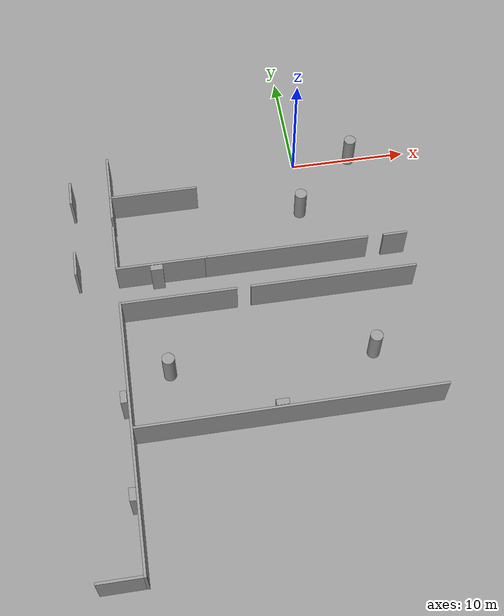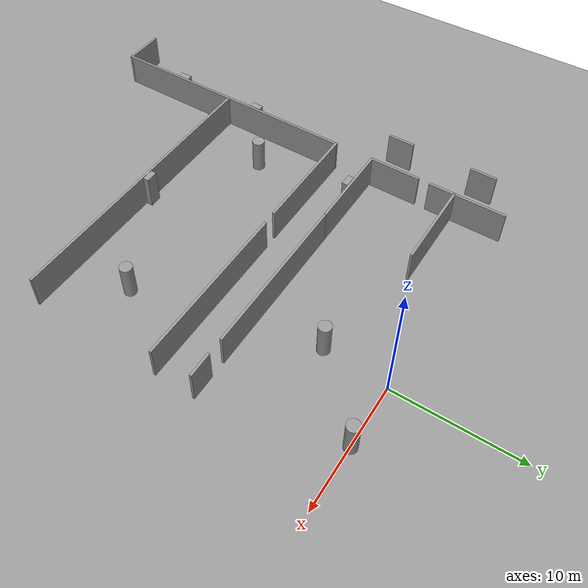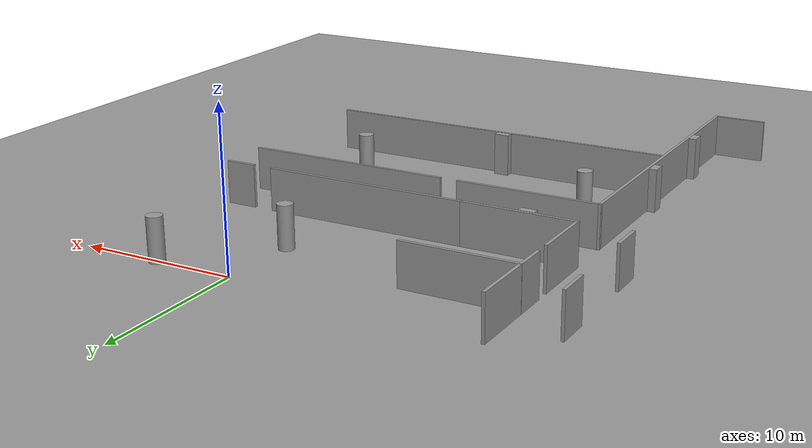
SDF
<sdf version="1.6">
 <world name="default">
  <model name="ground_plane_0">
   <static>1</static>
   <link name="link">
    <collision name="collision">
     <geometry><plane><normal>0 0 1</normal><size>100 100</size></plane></geometry>
     <surface><friction><ode><mu>100</mu><mu2>50</mu2></ode></friction></surface>
    </collision>
    <visual name="visual">
     <cast_shadows>0</cast_shadows>
     <geometry><plane><normal>0 0 1</normal><size>100 100</size></plane></geometry>
     <material>
      <script><uri>file://media/materials/scripts/gazebo.material</uri><name>Gazebo/Grey</name></script>
     </material>
    </visual>
   </link>
   <pose>-5.34924 -9.48736 0 0 -0 0</pose>
  </model>
  <model name="grey_wall_0_0">
   <link name="link">
    <pose>0 0 1.4 0 -0 0</pose>
    <inertial>
     <mass>1</mass>
     <inertia><ixx>1</ixx><ixy>0</ixy><ixz>0</ixz><iyy>1</iyy><iyz>0</iyz><izz>1</izz></inertia>
    </inertial>
    <visual name="visual">
     <cast_shadows>0</cast_shadows>
     <geometry><box><size>7.4 0.2 2.8</size></box></geometry>
     <material>
      <script>
       <uri>model://grey_wall/materials/scripts</uri>
       <uri>model://grey_wall/materials/textures</uri>
       <name>vrc/grey_wall</name>
      </script>
      <ambient>1 1 1 1</ambient>
      <diffuse>1 1 1 1</diffuse>
      <specular>0 0 0 1</specular>
      <emissive>0 0 0 1</emissive>
      <shader type="vertex"><normal_map>__default__</normal_map></shader>
     </material>
    </visual>
    <collision name="collision">
     <geometry><box><size>7.4 0.2 2.8</size></box></geometry>
     <surface>
      <friction>
       <ode><mu>1</mu><mu2>1</mu2><fdir1>0 0 0</fdir1><slip1>0</slip1><slip2>0</slip2></ode>
       <torsional>
        <coefficient>1</coefficient>
        <patch_radius>0</patch_radius>
        <surface_radius>0</surface_radius>
        <use_patch_radius>1</use_patch_radius>
        <ode><slip>0</slip></ode>
       </torsional>
      </friction>
      <bounce><restitution_coefficient>0</restitution_coefficient><threshold>1e+06</threshold></bounce>
      <contact>
       <collide_without_contact>0</collide_without_contact>
       <collide_without_contact_bitmask>1</collide_without_contact_bitmask>
       <collide_bitmask>1</collide_bitmask>
       <ode>
        <soft_cfm>0</soft_cfm>
        <soft_erp>0.2</soft_erp>
        <kp>1e+13</kp>
        <kd>1</kd>
        <max_vel>0.01</max_vel>
        <min_depth>0</min_depth>
       </ode>
       <bullet>
        <split_impulse>1</split_impulse>
        <split_impulse_penetration_threshold>-0.01</split_impulse_penetration_threshold>
        <soft_cfm>0</soft_cfm>
        <soft_erp>0.2</soft_erp>
        <kp>1e+13</kp>
        <kd>1</kd>
       </bullet>
      </contact>
     </surface>
    </collision>
   </link>
   <static>1</static>
   <pose>-12.7052 -10.3243 0 0 -0 0</pose>
  </model>
  <model name="grey_wall_0_0_clone">
   <link name="link">
    <pose>0 0 1.4 0 -0 0</pose>
    <inertial>
     <mass>1</mass>
     <inertia><ixx>1</ixx><ixy>0</ixy><ixz>0</ixz><iyy>1</iyy><iyz>0</iyz><izz>1</izz></inertia>
    </inertial>
    <visual name="visual">
     <cast_shadows>0</cast_shadows>
     <geometry><box><size>7.4 0.2 2.8</size></box></geometry>
     <material>
      <script>
       <uri>model://grey_wall/materials/scripts</uri>
       <uri>model://grey_wall/materials/textures</uri>
       <name>vrc/grey_wall</name>
      </script>
      <ambient>1 1 1 1</ambient>
      <diffuse>1 1 1 1</diffuse>
      <specular>0 0 0 1</specular>
      <emissive>0 0 0 1</emissive>
      <shader type="vertex"><normal_map>__default__</normal_map></shader>
     </material>
    </visual>
    <collision name="collision">
     <geometry><box><size>7.4 0.2 2.8</size></box></geometry>
     <surface>
      <friction>
       <ode><mu>1</mu><mu2>1</mu2><fdir1>0 0 0</fdir1><slip1>0</slip1><slip2>0</slip2></ode>
       <torsional>
        <coefficient>1</coefficient>
        <patch_radius>0</patch_radius>
        <surface_radius>0</surface_radius>
        <use_patch_radius>1</use_patch_radius>
        <ode><slip>0</slip></ode>
       </torsional>
      </friction>
      <bounce><restitution_coefficient>0</restitution_coefficient><threshold>1e+06</threshold></bounce>
      <contact>
       <collide_without_contact>0</collide_without_contact>
       <collide_without_contact_bitmask>1</collide_without_contact_bitmask>
       <collide_bitmask>1</collide_bitmask>
       <ode>
        <soft_cfm>0</soft_cfm>
        <soft_erp>0.2</soft_erp>
        <kp>1e+13</kp>
        <kd>1</kd>
        <max_vel>0.01</max_vel>
        <min_depth>0</min_depth>
       </ode>
       <bullet>
        <split_impulse>1</split_impulse>
        <split_impulse_penetration_threshold>-0.01</split_impulse_penetration_threshold>
        <soft_cfm>0</soft_cfm>
        <soft_erp>0.2</soft_erp>
        <kp>1e+13</kp>
        <kd>1</kd>
       </bullet>
      </contact>
     </surface>
    </collision>
   </link>
   <static>1</static>
   <pose>-12.6638 -3.11787 0 0 -0 0</pose>
  </model>
  <model name="g3_clone_clone_0_clone_0_0_0_0_0_0_clone_clone_clone_0_clone_0_clone_0_clone_0_clone">
   <link name="link">
    <pose>1.55996 -1.33829 1.4 0 -0 0.001589</pose>
    <inertial>
     <mass>1</mass>
     <inertia><ixx>1</ixx><ixy>0</ixy><ixz>0</ixz><iyy>1</iyy><iyz>0</iyz><izz>1</izz></inertia>
    </inertial>
    <visual name="visual">
     <cast_shadows>0</cast_shadows>
     <geometry><box><size>2 0.2 2.8</size></box></geometry>
     <material>
      <script>
       <uri>model://grey_wall/materials/scripts</uri>
       <uri>model://grey_wall/materials/textures</uri>
       <name>vrc/grey_wall</name>
      </script>
      <ambient>1 1 1 1</ambient>
      <diffuse>1 1 1 1</diffuse>
      <specular>0 0 0 1</specular>
      <emissive>0 0 0 1</emissive>
      <shader type="vertex"><normal_map>__default__</normal_map></shader>
     </material>
    </visual>
    <collision name="collision">
     <geometry><box><size>2 0.2 2.8</size></box></geometry>
     <surface>
      <friction>
       <ode><mu>1</mu><mu2>1</mu2><fdir1>0 0 0</fdir1><slip1>0</slip1><slip2>0</slip2></ode>
       <torsional>
        <coefficient>1</coefficient>
        <patch_radius>0</patch_radius>
        <surface_radius>0</surface_radius>
        <use_patch_radius>1</use_patch_radius>
        <ode><slip>0</slip></ode>
       </torsional>
      </friction>
      <bounce><restitution_coefficient>0</restitution_coefficient><threshold>1e+06</threshold></bounce>
      <contact>
       <collide_without_contact>0</collide_without_contact>
       <collide_without_contact_bitmask>1</collide_without_contact_bitmask>
       <collide_bitmask>1</collide_bitmask>
       <ode>
        <soft_cfm>0</soft_cfm>
        <soft_erp>0.2</soft_erp>
        <kp>1e+13</kp>
        <kd>1</kd>
        <max_vel>0.01</max_vel>
        <min_depth>0</min_depth>
       </ode>
       <bullet>
        <split_impulse>1</split_impulse>
        <split_impulse_penetration_threshold>-0.01</split_impulse_penetration_threshold>
        <soft_cfm>0</soft_cfm>
        <soft_erp>0.2</soft_erp>
        <kp>1e+13</kp>
        <kd>1</kd>
       </bullet>
      </contact>
     </surface>
    </collision>
   </link>
   <static>1</static>
   <pose>5.02098 -9.01184 0 0 -0 0.002262</pose>
  </model>
  <model name="g1_clone_1_1_clone">
   <link name="link">
    <pose>0.251458 0.000378 1.4 0 -0 0</pose>
    <inertial>
     <mass>1</mass>
     <inertia><ixx>1</ixx><ixy>0</ixy><ixz>0</ixz><iyy>1</iyy><iyz>0</iyz><izz>1</izz></inertia>
    </inertial>
    <visual name="visual">
     <cast_shadows>0</cast_shadows>
     <geometry><box><size>13.5 0.2 2.8</size></box></geometry>
     <material>
      <script>
       <uri>model://grey_wall/materials/scripts</uri>
       <uri>model://grey_wall/materials/textures</uri>
       <name>vrc/grey_wall</name>
      </script>
      <ambient>1 1 1 1</ambient>
      <diffuse>1 1 1 1</diffuse>
      <specular>0 0 0 1</specular>
      <emissive>0 0 0 1</emissive>
      <shader type="vertex"><normal_map>__default__</normal_map></shader>
     </material>
    </visual>
    <collision name="collision">
     <geometry><box><size>13.5 0.2 2.8</size></box></geometry>
     <surface>
      <friction>
       <ode><mu>1</mu><mu2>1</mu2><fdir1>0 0 0</fdir1><slip1>0</slip1><slip2>0</slip2></ode>
       <torsional>
        <coefficient>1</coefficient>
        <patch_radius>0</patch_radius>
        <surface_radius>0</surface_radius>
        <use_patch_radius>1</use_patch_radius>
        <ode><slip>0</slip></ode>
       </torsional>
      </friction>
      <bounce><restitution_coefficient>0</restitution_coefficient><threshold>1e+06</threshold></bounce>
      <contact>
       <collide_without_contact>0</collide_without_contact>
       <collide_without_contact_bitmask>1</collide_without_contact_bitmask>
       <collide_bitmask>1</collide_bitmask>
       <ode>
        <soft_cfm>0</soft_cfm>
        <soft_erp>0.2</soft_erp>
        <kp>1e+13</kp>
        <kd>1</kd>
        <max_vel>0.01</max_vel>
        <min_depth>0</min_depth>
       </ode>
       <bullet>
        <split_impulse>1</split_impulse>
        <split_impulse_penetration_threshold>-0.01</split_impulse_penetration_threshold>
        <soft_cfm>0</soft_cfm>
        <soft_erp>0.2</soft_erp>
        <kp>1e+13</kp>
        <kd>1</kd>
       </bullet>
      </contact>
     </surface>
    </collision>
   </link>
   <static>1</static>
   <pose>-2.69768 -10.3249 0 0 -0 0</pose>
  </model>
  <model name="g3_clone_clone_0_0_0_0_0_clone_0_clone_0_clone_2_clone_0_clone_0_clone">
   <link name="link">
    <pose>0.7232 0.251992 1.4 0 -0 0</pose>
    <inertial>
     <mass>1</mass>
     <inertia><ixx>1</ixx><ixy>0</ixy><ixz>0</ixz><iyy>1</iyy><iyz>0</iyz><izz>1</izz></inertia>
    </inertial>
    <visual name="visual">
     <cast_shadows>0</cast_shadows>
     <geometry><box><size>4.3 0.2 2.8</size></box></geometry>
     <material>
      <script>
       <uri>model://grey_wall/materials/scripts</uri>
       <uri>model://grey_wall/materials/textures</uri>
       <name>vrc/grey_wall</name>
      </script>
      <ambient>1 1 1 1</ambient>
      <diffuse>1 1 1 1</diffuse>
      <specular>0 0 0 1</specular>
      <emissive>0 0 0 1</emissive>
      <shader type="vertex"><normal_map>__default__</normal_map></shader>
     </material>
    </visual>
    <collision name="collision">
     <geometry><box><size>4.3 0.2 2.8</size></box></geometry>
     <surface>
      <friction>
       <ode><mu>1</mu><mu2>1</mu2><fdir1>0 0 0</fdir1><slip1>0</slip1><slip2>0</slip2></ode>
       <torsional>
        <coefficient>1</coefficient>
        <patch_radius>0</patch_radius>
        <surface_radius>0</surface_radius>
        <use_patch_radius>1</use_patch_radius>
        <ode><slip>0</slip></ode>
       </torsional>
      </friction>
      <bounce><restitution_coefficient>0</restitution_coefficient><threshold>1e+06</threshold></bounce>
      <contact>
       <collide_without_contact>0</collide_without_contact>
       <collide_without_contact_bitmask>1</collide_without_contact_bitmask>
       <collide_bitmask>1</collide_bitmask>
       <ode>
        <soft_cfm>0</soft_cfm>
        <soft_erp>0.2</soft_erp>
        <kp>1e+13</kp>
        <kd>1</kd>
        <max_vel>0.01</max_vel>
        <min_depth>0</min_depth>
       </ode>
       <bullet>
        <split_impulse>1</split_impulse>
        <split_impulse_penetration_threshold>-0.01</split_impulse_penetration_threshold>
        <soft_cfm>0</soft_cfm>
        <soft_erp>0.2</soft_erp>
        <kp>1e+13</kp>
        <kd>1</kd>
       </bullet>
      </contact>
     </surface>
    </collision>
   </link>
   <static>1</static>
   <pose>-16.5012 -0.321986 0 0 0 -1.57613</pose>
  </model>
  <model name="g3_clone_clone_0_clone_0_0_0_0_0_0_clone_clone_clone_0_clone_0_clone_1_0_clone_clone">
   <link name="link">
    <pose>0.277892 -0.062462 1.4 0 -0 0</pose>
    <inertial>
     <mass>1</mass>
     <inertia><ixx>1</ixx><ixy>0</ixy><ixz>0</ixz><iyy>1</iyy><iyz>0</iyz><izz>1</izz></inertia>
    </inertial>
    <visual name="visual">
     <cast_shadows>0</cast_shadows>
     <geometry><box><size>2.2 0.2 2.8</size></box></geometry>
     <material>
      <script>
       <uri>model://grey_wall/materials/scripts</uri>
       <uri>model://grey_wall/materials/textures</uri>
       <name>vrc/grey_wall</name>
      </script>
      <ambient>1 1 1 1</ambient>
      <diffuse>1 1 1 1</diffuse>
      <specular>0 0 0 1</specular>
      <emissive>0 0 0 1</emissive>
      <shader type="vertex"><normal_map>__default__</normal_map></shader>
     </material>
    </visual>
    <collision name="collision">
     <geometry><box><size>2.2 0.2 2.8</size></box></geometry>
     <surface>
      <friction>
       <ode><mu>1</mu><mu2>1</mu2><fdir1>0 0 0</fdir1><slip1>0</slip1><slip2>0</slip2></ode>
       <torsional>
        <coefficient>1</coefficient>
        <patch_radius>0</patch_radius>
        <surface_radius>0</surface_radius>
        <use_patch_radius>1</use_patch_radius>
        <ode><slip>0</slip></ode>
       </torsional>
      </friction>
      <bounce><restitution_coefficient>0</restitution_coefficient><threshold>1e+06</threshold></bounce>
      <contact>
       <collide_without_contact>0</collide_without_contact>
       <collide_without_contact_bitmask>1</collide_without_contact_bitmask>
       <collide_bitmask>1</collide_bitmask>
       <ode>
        <soft_cfm>0</soft_cfm>
        <soft_erp>0.2</soft_erp>
        <kp>1e+13</kp>
        <kd>1</kd>
        <max_vel>0.01</max_vel>
        <min_depth>0</min_depth>
       </ode>
       <bullet>
        <split_impulse>1</split_impulse>
        <split_impulse_penetration_threshold>-0.01</split_impulse_penetration_threshold>
        <soft_cfm>0</soft_cfm>
        <soft_erp>0.2</soft_erp>
        <kp>1e+13</kp>
        <kd>1</kd>
       </bullet>
      </contact>
     </surface>
    </collision>
   </link>
   <static>1</static>
   <pose>-16.2065 -3.85445 0 0 0 -1.57614</pose>
  </model>
  <model name="g3_clone_clone_0_0_0_0_0_clone_0_clone_0_clone_2_clone_0_clone_0_clone_clone">
   <link name="link">
    <pose>0.7232 0.251992 1.4 0 -0 0</pose>
    <inertial>
     <mass>1</mass>
     <inertia><ixx>1</ixx><ixy>0</ixy><ixz>0</ixz><iyy>1</iyy><iyz>0</iyz><izz>1</izz></inertia>
    </inertial>
    <visual name="visual">
     <cast_shadows>0</cast_shadows>
     <geometry><box><size>4.3 0.2 2.8</size></box></geometry>
     <material>
      <script>
       <uri>model://grey_wall/materials/scripts</uri>
       <uri>model://grey_wall/materials/textures</uri>
       <name>vrc/grey_wall</name>
      </script>
      <ambient>1 1 1 1</ambient>
      <diffuse>1 1 1 1</diffuse>
      <specular>0 0 0 1</specular>
      <emissive>0 0 0 1</emissive>
      <shader type="vertex"><normal_map>__default__</normal_map></shader>
     </material>
    </visual>
    <collision name="collision">
     <geometry><box><size>4.3 0.2 2.8</size></box></geometry>
     <surface>
      <friction>
       <ode><mu>1</mu><mu2>1</mu2><fdir1>0 0 0</fdir1><slip1>0</slip1><slip2>0</slip2></ode>
       <torsional>
        <coefficient>1</coefficient>
        <patch_radius>0</patch_radius>
        <surface_radius>0</surface_radius>
        <use_patch_radius>1</use_patch_radius>
        <ode><slip>0</slip></ode>
       </torsional>
      </friction>
      <bounce><restitution_coefficient>0</restitution_coefficient><threshold>1e+06</threshold></bounce>
      <contact>
       <collide_without_contact>0</collide_without_contact>
       <collide_without_contact_bitmask>1</collide_without_contact_bitmask>
       <collide_bitmask>1</collide_bitmask>
       <ode>
        <soft_cfm>0</soft_cfm>
        <soft_erp>0.2</soft_erp>
        <kp>1e+13</kp>
        <kd>1</kd>
        <max_vel>0.01</max_vel>
        <min_depth>0</min_depth>
       </ode>
       <bullet>
        <split_impulse>1</split_impulse>
        <split_impulse_penetration_threshold>-0.01</split_impulse_penetration_threshold>
        <soft_cfm>0</soft_cfm>
        <soft_erp>0.2</soft_erp>
        <kp>1e+13</kp>
        <kd>1</kd>
       </bullet>
      </contact>
     </surface>
    </collision>
   </link>
   <static>1</static>
   <pose>-16.5479 -7.54836 0 0 0 -1.57613</pose>
  </model>
  <model name="g2_clone_0_0_clone_clone_clone_clone_clone_0_clone">
   <link name="link">
    <pose>0 0 1.4 0 -0 0</pose>
    <inertial>
     <mass>1</mass>
     <inertia><ixx>1</ixx><ixy>0</ixy><ixz>0</ixz><iyy>1</iyy><iyz>0</iyz><izz>1</izz></inertia>
    </inertial>
    <visual name="visual">
     <cast_shadows>0</cast_shadows>
     <geometry><box><size>21.8 0.2 2.8</size></box></geometry>
     <material>
      <script>
       <uri>model://grey_wall/materials/scripts</uri>
       <uri>model://grey_wall/materials/textures</uri>
       <name>vrc/grey_wall</name>
      </script>
      <ambient>1 1 1 1</ambient>
      <diffuse>1 1 1 1</diffuse>
      <specular>0 0 0 1</specular>
      <emissive>0 0 0 1</emissive>
      <shader type="vertex"><normal_map>__default__</normal_map></shader>
     </material>
    </visual>
    <collision name="collision">
     <geometry><box><size>21.8 0.2 2.8</size></box></geometry>
     <surface>
      <friction>
       <ode><mu>1</mu><mu2>1</mu2><fdir1>0 0 0</fdir1><slip1>0</slip1><slip2>0</slip2></ode>
       <torsional>
        <coefficient>1</coefficient>
        <patch_radius>0</patch_radius>
        <surface_radius>0</surface_radius>
        <use_patch_radius>1</use_patch_radius>
        <ode><slip>0</slip></ode>
       </torsional>
      </friction>
      <bounce><restitution_coefficient>0</restitution_coefficient><threshold>1e+06</threshold></bounce>
      <contact>
       <collide_without_contact>0</collide_without_contact>
       <collide_without_contact_bitmask>1</collide_without_contact_bitmask>
       <collide_bitmask>1</collide_bitmask>
       <ode>
        <soft_cfm>0</soft_cfm>
        <soft_erp>0.2</soft_erp>
        <kp>1e+13</kp>
        <kd>1</kd>
        <max_vel>0.01</max_vel>
        <min_depth>0</min_depth>
       </ode>
       <bullet>
        <split_impulse>1</split_impulse>
        <split_impulse_penetration_threshold>-0.01</split_impulse_penetration_threshold>
        <soft_cfm>0</soft_cfm>
        <soft_erp>0.2</soft_erp>
        <kp>1e+13</kp>
        <kd>1</kd>
       </bullet>
      </contact>
     </surface>
    </collision>
   </link>
   <static>1</static>
   <pose>-16.378 -24.4291 0 0 0 -1.57584</pose>
  </model>
  <model name="g3_clone_clone_0_clone_0_0_0_0_0_0_clone_clone_clone_0_clone_0_clone_1_0_clone_2_clone">
   <link name="link">
    <pose>0.277892 -0.062462 1.4 0 -0 0</pose>
    <inertial>
     <mass>1</mass>
     <inertia><ixx>1</ixx><ixy>0</ixy><ixz>0</ixz><iyy>1</iyy><iyz>0</iyz><izz>1</izz></inertia>
    </inertial>
    <visual name="visual">
     <cast_shadows>0</cast_shadows>
     <geometry><box><size>2.2 0.2 2.8</size></box></geometry>
     <material>
      <script>
       <uri>model://grey_wall/materials/scripts</uri>
       <uri>model://grey_wall/materials/textures</uri>
       <name>vrc/grey_wall</name>
      </script>
      <ambient>1 1 1 1</ambient>
      <diffuse>1 1 1 1</diffuse>
      <specular>0 0 0 1</specular>
      <emissive>0 0 0 1</emissive>
      <shader type="vertex"><normal_map>__default__</normal_map></shader>
     </material>
    </visual>
    <collision name="collision">
     <geometry><box><size>2.2 0.2 2.8</size></box></geometry>
     <surface>
      <friction>
       <ode><mu>1</mu><mu2>1</mu2><fdir1>0 0 0</fdir1><slip1>0</slip1><slip2>0</slip2></ode>
       <torsional>
        <coefficient>1</coefficient>
        <patch_radius>0</patch_radius>
        <surface_radius>0</surface_radius>
        <use_patch_radius>1</use_patch_radius>
        <ode><slip>0</slip></ode>
       </torsional>
      </friction>
      <bounce><restitution_coefficient>0</restitution_coefficient><threshold>1e+06</threshold></bounce>
      <contact>
       <collide_without_contact>0</collide_without_contact>
       <collide_without_contact_bitmask>1</collide_without_contact_bitmask>
       <collide_bitmask>1</collide_bitmask>
       <ode>
        <soft_cfm>0</soft_cfm>
        <soft_erp>0.2</soft_erp>
        <kp>1e+13</kp>
        <kd>1</kd>
        <max_vel>0.01</max_vel>
        <min_depth>0</min_depth>
       </ode>
       <bullet>
        <split_impulse>1</split_impulse>
        <split_impulse_penetration_threshold>-0.01</split_impulse_penetration_threshold>
        <soft_cfm>0</soft_cfm>
        <soft_erp>0.2</soft_erp>
        <kp>1e+13</kp>
        <kd>1</kd>
       </bullet>
      </contact>
     </surface>
    </collision>
   </link>
   <static>1</static>
   <pose>-19.4975 -1.83806 0 0 0 -1.57614</pose>
  </model>
  <model name="g3_clone_clone_0_clone_0_0_0_0_0_0_clone_clone_clone_0_clone_0_clone_1_0_clone_2_clone_clone">
   <link name="link">
    <pose>0.277892 -0.062462 1.4 0 -0 0</pose>
    <inertial>
     <mass>1</mass>
     <inertia><ixx>1</ixx><ixy>0</ixy><ixz>0</ixz><iyy>1</iyy><iyz>0</iyz><izz>1</izz></inertia>
    </inertial>
    <visual name="visual">
     <cast_shadows>0</cast_shadows>
     <geometry><box><size>2.2 0.2 2.8</size></box></geometry>
     <material>
      <script>
       <uri>model://grey_wall/materials/scripts</uri>
       <uri>model://grey_wall/materials/textures</uri>
       <name>vrc/grey_wall</name>
      </script>
      <ambient>1 1 1 1</ambient>
      <diffuse>1 1 1 1</diffuse>
      <specular>0 0 0 1</specular>
      <emissive>0 0 0 1</emissive>
      <shader type="vertex"><normal_map>__default__</normal_map></shader>
     </material>
    </visual>
    <collision name="collision">
     <geometry><box><size>2.2 0.2 2.8</size></box></geometry>
     <surface>
      <friction>
       <ode><mu>1</mu><mu2>1</mu2><fdir1>0 0 0</fdir1><slip1>0</slip1><slip2>0</slip2></ode>
       <torsional>
        <coefficient>1</coefficient>
        <patch_radius>0</patch_radius>
        <surface_radius>0</surface_radius>
        <use_patch_radius>1</use_patch_radius>
        <ode><slip>0</slip></ode>
       </torsional>
      </friction>
      <bounce><restitution_coefficient>0</restitution_coefficient><threshold>1e+06</threshold></bounce>
      <contact>
       <collide_without_contact>0</collide_without_contact>
       <collide_without_contact_bitmask>1</collide_without_contact_bitmask>
       <collide_bitmask>1</collide_bitmask>
       <ode>
        <soft_cfm>0</soft_cfm>
        <soft_erp>0.2</soft_erp>
        <kp>1e+13</kp>
        <kd>1</kd>
        <max_vel>0.01</max_vel>
        <min_depth>0</min_depth>
       </ode>
       <bullet>
        <split_impulse>1</split_impulse>
        <split_impulse_penetration_threshold>-0.01</split_impulse_penetration_threshold>
        <soft_cfm>0</soft_cfm>
        <soft_erp>0.2</soft_erp>
        <kp>1e+13</kp>
        <kd>1</kd>
       </bullet>
      </contact>
     </surface>
    </collision>
   </link>
   <static>1</static>
   <pose>-19.5281 -9.03821 0 0 0 -1.57614</pose>
  </model>
  <model name="grey_wall_0_0_clone_2_1_0">
   <link name="link">
    <pose>-1.83363 1.73274 1.4 0 -0 0</pose>
    <inertial>
     <mass>1</mass>
     <inertia><ixx>1</ixx><ixy>0</ixy><ixz>0</ixz><iyy>1</iyy><iyz>0</iyz><izz>1</izz></inertia>
    </inertial>
    <visual name="visual">
     <cast_shadows>0</cast_shadows>
     <geometry><box><size>3.5 0.2 2.8</size></box></geometry>
     <material>
      <script>
       <uri>model://grey_wall/materials/scripts</uri>
       <uri>model://grey_wall/materials/textures</uri>
       <name>vrc/grey_wall</name>
      </script>
      <ambient>1 1 1 1</ambient>
      <diffuse>1 1 1 1</diffuse>
      <specular>0 0 0 1</specular>
      <emissive>0 0 0 1</emissive>
      <shader type="vertex"><normal_map>__default__</normal_map></shader>
     </material>
    </visual>
    <collision name="collision">
     <geometry><box><size>3.5 0.2 2.8</size></box></geometry>
     <surface>
      <friction>
       <ode><mu>1</mu><mu2>1</mu2><fdir1>0 0 0</fdir1><slip1>0</slip1><slip2>0</slip2></ode>
       <torsional>
        <coefficient>1</coefficient>
        <patch_radius>0</patch_radius>
        <surface_radius>0</surface_radius>
        <use_patch_radius>1</use_patch_radius>
        <ode><slip>0</slip></ode>
       </torsional>
      </friction>
      <bounce><restitution_coefficient>0</restitution_coefficient><threshold>1e+06</threshold></bounce>
      <contact>
       <collide_without_contact>0</collide_without_contact>
       <collide_without_contact_bitmask>1</collide_without_contact_bitmask>
       <collide_bitmask>1</collide_bitmask>
       <ode>
        <soft_cfm>0</soft_cfm>
        <soft_erp>0.2</soft_erp>
        <kp>1e+13</kp>
        <kd>1</kd>
        <max_vel>0.01</max_vel>
        <min_depth>0</min_depth>
       </ode>
       <bullet>
        <split_impulse>1</split_impulse>
        <split_impulse_penetration_threshold>-0.01</split_impulse_penetration_threshold>
        <soft_cfm>0</soft_cfm>
        <soft_erp>0.2</soft_erp>
        <kp>1e+13</kp>
        <kd>1</kd>
       </bullet>
      </contact>
     </surface>
    </collision>
   </link>
   <static>1</static>
   <pose>-16.2441 -36.9612 0 0 -0 0</pose>
  </model>
  <model name="g1_clone_1_1_clone_clone_0">
   <link name="link">
    <pose>0.251458 0.000378 1.4 0 -0 0</pose>
    <inertial>
     <mass>1</mass>
     <inertia><ixx>1</ixx><ixy>0</ixy><ixz>0</ixz><iyy>1</iyy><iyz>0</iyz><izz>1</izz></inertia>
    </inertial>
    <visual name="visual">
     <cast_shadows>0</cast_shadows>
     <geometry><box><size>13.5 0.2 2.8</size></box></geometry>
     <material>
      <script>
       <uri>model://grey_wall/materials/scripts</uri>
       <uri>model://grey_wall/materials/textures</uri>
       <name>vrc/grey_wall</name>
      </script>
      <ambient>1 1 1 1</ambient>
      <diffuse>1 1 1 1</diffuse>
      <specular>0 0 0 1</specular>
      <emissive>0 0 0 1</emissive>
      <shader type="vertex"><normal_map>__default__</normal_map></shader>
     </material>
    </visual>
    <collision name="collision">
     <geometry><box><size>13.5 0.2 2.8</size></box></geometry>
     <surface>
      <friction>
       <ode><mu>1</mu><mu2>1</mu2><fdir1>0 0 0</fdir1><slip1>0</slip1><slip2>0</slip2></ode>
       <torsional>
        <coefficient>1</coefficient>
        <patch_radius>0</patch_radius>
        <surface_radius>0</surface_radius>
        <use_patch_radius>1</use_patch_radius>
        <ode><slip>0</slip></ode>
       </torsional>
      </friction>
      <bounce><restitution_coefficient>0</restitution_coefficient><threshold>1e+06</threshold></bounce>
      <contact>
       <collide_without_contact>0</collide_without_contact>
       <collide_without_contact_bitmask>1</collide_without_contact_bitmask>
       <collide_bitmask>1</collide_bitmask>
       <ode>
        <soft_cfm>0</soft_cfm>
        <soft_erp>0.2</soft_erp>
        <kp>1e+13</kp>
        <kd>1</kd>
        <max_vel>0.01</max_vel>
        <min_depth>0</min_depth>
       </ode>
       <bullet>
        <split_impulse>1</split_impulse>
        <split_impulse_penetration_threshold>-0.01</split_impulse_penetration_threshold>
        <soft_cfm>0</soft_cfm>
        <soft_erp>0.2</soft_erp>
        <kp>1e+13</kp>
        <kd>1</kd>
       </bullet>
      </contact>
     </surface>
    </collision>
   </link>
   <static>1</static>
   <pose>0.572516 -13.6102 0 0 -0 0</pose>
  </model>
  <model name="g1_clone_1_1_clone_clone_0_clone_0">
   <link name="link">
    <pose>-3.32829 2.80646 1.4 0 -0 0</pose>
    <inertial>
     <mass>1</mass>
     <inertia><ixx>1</ixx><ixy>0</ixy><ixz>0</ixz><iyy>1</iyy><iyz>0</iyz><izz>1</izz></inertia>
    </inertial>
    <visual name="visual">
     <cast_shadows>0</cast_shadows>
     <geometry><box><size>9.4 0.2 2.8</size></box></geometry>
     <material>
      <script>
       <uri>model://grey_wall/materials/scripts</uri>
       <uri>model://grey_wall/materials/textures</uri>
       <name>vrc/grey_wall</name>
      </script>
      <ambient>1 1 1 1</ambient>
      <diffuse>1 1 1 1</diffuse>
      <specular>0 0 0 1</specular>
      <emissive>0 0 0 1</emissive>
      <shader type="vertex"><normal_map>__default__</normal_map></shader>
     </material>
    </visual>
    <collision name="collision">
     <geometry><box><size>9.4 0.2 2.8</size></box></geometry>
     <surface>
      <friction>
       <ode><mu>1</mu><mu2>1</mu2><fdir1>0 0 0</fdir1><slip1>0</slip1><slip2>0</slip2></ode>
       <torsional>
        <coefficient>1</coefficient>
        <patch_radius>0</patch_radius>
        <surface_radius>0</surface_radius>
        <use_patch_radius>1</use_patch_radius>
        <ode><slip>0</slip></ode>
       </torsional>
      </friction>
      <bounce><restitution_coefficient>0</restitution_coefficient><threshold>1e+06</threshold></bounce>
      <contact>
       <collide_without_contact>0</collide_without_contact>
       <collide_without_contact_bitmask>1</collide_without_contact_bitmask>
       <collide_bitmask>1</collide_bitmask>
       <ode>
        <soft_cfm>0</soft_cfm>
        <soft_erp>0.2</soft_erp>
        <kp>1e+13</kp>
        <kd>1</kd>
        <max_vel>0.01</max_vel>
        <min_depth>0</min_depth>
       </ode>
       <bullet>
        <split_impulse>1</split_impulse>
        <split_impulse_penetration_threshold>-0.01</split_impulse_penetration_threshold>
        <soft_cfm>0</soft_cfm>
        <soft_erp>0.2</soft_erp>
        <kp>1e+13</kp>
        <kd>1</kd>
       </bullet>
      </contact>
     </surface>
    </collision>
   </link>
   <static>1</static>
   <pose>-8.39801 -16.4361 0 0 -0 0</pose>
  </model>
  <model name="g1_clone_1_0_clone_0_0_0_clone_clone_clone_0">
   <link name="link">
    <pose>-2.14563 -1.06619 1.4 0 -0 0</pose>
    <inertial>
     <mass>1</mass>
     <inertia><ixx>1</ixx><ixy>0</ixy><ixz>0</ixz><iyy>1</iyy><iyz>0</iyz><izz>1</izz></inertia>
    </inertial>
    <visual name="visual">
     <cast_shadows>0</cast_shadows>
     <geometry><box><size>23.8 0.2 2.8</size></box></geometry>
     <material>
      <script>
       <uri>model://grey_wall/materials/scripts</uri>
       <uri>model://grey_wall/materials/textures</uri>
       <name>vrc/grey_wall</name>
      </script>
      <ambient>1 1 1 1</ambient>
      <diffuse>1 1 1 1</diffuse>
      <specular>0 0 0 1</specular>
      <emissive>0 0 0 1</emissive>
      <shader type="vertex"><normal_map>__default__</normal_map></shader>
     </material>
    </visual>
    <collision name="collision">
     <geometry><box><size>23.8 0.2 2.8</size></box></geometry>
     <surface>
      <friction>
       <ode><mu>1</mu><mu2>1</mu2><fdir1>0 0 0</fdir1><slip1>0</slip1><slip2>0</slip2></ode>
       <torsional>
        <coefficient>1</coefficient>
        <patch_radius>0</patch_radius>
        <surface_radius>0</surface_radius>
        <use_patch_radius>1</use_patch_radius>
        <ode><slip>0</slip></ode>
       </torsional>
      </friction>
      <bounce><restitution_coefficient>0</restitution_coefficient><threshold>1e+06</threshold></bounce>
      <contact>
       <collide_without_contact>0</collide_without_contact>
       <collide_without_contact_bitmask>1</collide_without_contact_bitmask>
       <collide_bitmask>1</collide_bitmask>
       <ode>
        <soft_cfm>0</soft_cfm>
        <soft_erp>0.2</soft_erp>
        <kp>1e+13</kp>
        <kd>1</kd>
        <max_vel>0.01</max_vel>
        <min_depth>0</min_depth>
       </ode>
       <bullet>
        <split_impulse>1</split_impulse>
        <split_impulse_penetration_threshold>-0.01</split_impulse_penetration_threshold>
        <soft_cfm>0</soft_cfm>
        <soft_erp>0.2</soft_erp>
        <kp>1e+13</kp>
        <kd>1</kd>
       </bullet>
      </contact>
     </surface>
    </collision>
   </link>
   <static>1</static>
   <pose>-2.24533 -23.2598 0 0 -0 0.000774</pose>
  </model>
  <model name="unit_cylinder_0_1_0_clone_1">
   <link name="link">
    <pose>0.876728 0.324661 0.817505 0 -0 0</pose>
    <inertial>
     <mass>1</mass>
     <inertia><ixx>0.145833</ixx><ixy>0</ixy><ixz>0</ixz><iyy>0.145833</iyy><iyz>0</iyz><izz>0.125</izz></inertia>
    </inertial>
    <visual name="visual">
     <geometry><cylinder><radius>0.5</radius><length>2.8</length></cylinder></geometry>
     <material>
      <script><name>Gazebo/Grey</name><uri>file://media/materials/scripts/gazebo.material</uri></script>
      <ambient>0.3 0.3 0.3 1</ambient>
      <diffuse>0.7 0.7 0.7 1</diffuse>
      <specular>0.01 0.01 0.01 1</specular>
      <emissive>0 0 0 1</emissive>
      <shader type="vertex"><normal_map>__default__</normal_map></shader>
     </material>
    </visual>
    <collision name="collision">
     <geometry><cylinder><radius>0.5</radius><length>2.8</length></cylinder></geometry>
     <surface>
      <friction>
       <ode><mu>1</mu><mu2>1</mu2><fdir1>0 0 0</fdir1><slip1>0</slip1><slip2>0</slip2></ode>
       <torsional>
        <coefficient>1</coefficient>
        <patch_radius>0</patch_radius>
        <surface_radius>0</surface_radius>
        <use_patch_radius>1</use_patch_radius>
        <ode><slip>0</slip></ode>
       </torsional>
      </friction>
      <bounce><restitution_coefficient>0</restitution_coefficient><threshold>1e+06</threshold></bounce>
      <contact>
       <collide_without_contact>0</collide_without_contact>
       <collide_without_contact_bitmask>1</collide_without_contact_bitmask>
       <collide_bitmask>1</collide_bitmask>
       <ode>
        <soft_cfm>0</soft_cfm>
        <soft_erp>0.2</soft_erp>
        <kp>1e+13</kp>
        <kd>1</kd>
        <max_vel>0.01</max_vel>
        <min_depth>0</min_depth>
       </ode>
       <bullet>
        <split_impulse>1</split_impulse>
        <split_impulse_penetration_threshold>-0.01</split_impulse_penetration_threshold>
        <soft_cfm>0</soft_cfm>
        <soft_erp>0.2</soft_erp>
        <kp>1e+13</kp>
        <kd>1</kd>
       </bullet>
      </contact>
     </surface>
    </collision>
   </link>
   <static>0</static>
   <pose>4.10885 -0.312882 0.582488 0 0 -5.8e-05</pose>
  </model>
  <model name="unit_cylinder_0_1_0_clone_2">
   <link name="link">
    <pose>0.876728 0.324661 0.817505 0 -0 0</pose>
    <inertial>
     <mass>1</mass>
     <inertia><ixx>0.145833</ixx><ixy>0</ixy><ixz>0</ixz><iyy>0.145833</iyy><iyz>0</iyz><izz>0.125</izz></inertia>
    </inertial>
    <visual name="visual">
     <geometry><cylinder><radius>0.5</radius><length>2.8</length></cylinder></geometry>
     <material>
      <script><name>Gazebo/Grey</name><uri>file://media/materials/scripts/gazebo.material</uri></script>
      <ambient>0.3 0.3 0.3 1</ambient>
      <diffuse>0.7 0.7 0.7 1</diffuse>
      <specular>0.01 0.01 0.01 1</specular>
      <emissive>0 0 0 1</emissive>
      <shader type="vertex"><normal_map>__default__</normal_map></shader>
     </material>
    </visual>
    <collision name="collision">
     <geometry><cylinder><radius>0.5</radius><length>2.8</length></cylinder></geometry>
     <surface>
      <friction>
       <ode><mu>1</mu><mu2>1</mu2><fdir1>0 0 0</fdir1><slip1>0</slip1><slip2>0</slip2></ode>
       <torsional>
        <coefficient>1</coefficient>
        <patch_radius>0</patch_radius>
        <surface_radius>0</surface_radius>
        <use_patch_radius>1</use_patch_radius>
        <ode><slip>0</slip></ode>
       </torsional>
      </friction>
      <bounce><restitution_coefficient>0</restitution_coefficient><threshold>1e+06</threshold></bounce>
      <contact>
       <collide_without_contact>0</collide_without_contact>
       <collide_without_contact_bitmask>1</collide_without_contact_bitmask>
       <collide_bitmask>1</collide_bitmask>
       <ode>
        <soft_cfm>0</soft_cfm>
        <soft_erp>0.2</soft_erp>
        <kp>1e+13</kp>
        <kd>1</kd>
        <max_vel>0.01</max_vel>
        <min_depth>0</min_depth>
       </ode>
       <bullet>
        <split_impulse>1</split_impulse>
        <split_impulse_penetration_threshold>-0.01</split_impulse_penetration_threshold>
        <soft_cfm>0</soft_cfm>
        <soft_erp>0.2</soft_erp>
        <kp>1e+13</kp>
        <kd>1</kd>
       </bullet>
      </contact>
     </surface>
    </collision>
   </link>
   <static>0</static>
   <pose>-1.1967 -5.46325 0.582488 0 -0 0.000359</pose>
  </model>
  <model name="unit_cylinder_0_1_0_clone_1_clone_0_clone_clone_0">
   <link name="link">
    <pose>0.876728 0.324661 0.817505 0 -0 0</pose>
    <inertial>
     <mass>1</mass>
     <inertia><ixx>0.145833</ixx><ixy>0</ixy><ixz>0</ixz><iyy>0.145833</iyy><iyz>0</iyz><izz>0.125</izz></inertia>
    </inertial>
    <visual name="visual">
     <geometry><cylinder><radius>0.5</radius><length>2.8</length></cylinder></geometry>
     <material>
      <script><name>Gazebo/Grey</name><uri>file://media/materials/scripts/gazebo.material</uri></script>
      <ambient>0.3 0.3 0.3 1</ambient>
      <diffuse>0.7 0.7 0.7 1</diffuse>
      <specular>0.01 0.01 0.01 1</specular>
      <emissive>0 0 0 1</emissive>
      <shader type="vertex"><normal_map>__default__</normal_map></shader>
     </material>
    </visual>
    <collision name="collision">
     <geometry><cylinder><radius>0.5</radius><length>2.8</length></cylinder></geometry>
     <surface>
      <friction>
       <ode><mu>1</mu><mu2>1</mu2><fdir1>0 0 0</fdir1><slip1>0</slip1><slip2>0</slip2></ode>
       <torsional>
        <coefficient>1</coefficient>
        <patch_radius>0</patch_radius>
        <surface_radius>0</surface_radius>
        <use_patch_radius>1</use_patch_radius>
        <ode><slip>0</slip></ode>
       </torsional>
      </friction>
      <bounce><restitution_coefficient>0</restitution_coefficient><threshold>1e+06</threshold></bounce>
      <contact>
       <collide_without_contact>0</collide_without_contact>
       <collide_without_contact_bitmask>1</collide_without_contact_bitmask>
       <collide_bitmask>1</collide_bitmask>
       <ode>
        <soft_cfm>0</soft_cfm>
        <soft_erp>0.2</soft_erp>
        <kp>1e+13</kp>
        <kd>1</kd>
        <max_vel>0.01</max_vel>
        <min_depth>0</min_depth>
       </ode>
       <bullet>
        <split_impulse>1</split_impulse>
        <split_impulse_penetration_threshold>-0.01</split_impulse_penetration_threshold>
        <soft_cfm>0</soft_cfm>
        <soft_erp>0.2</soft_erp>
        <kp>1e+13</kp>
        <kd>1</kd>
       </bullet>
      </contact>
     </surface>
    </collision>
   </link>
   <static>0</static>
   <pose>2.10873 -19.8604 0.582488 0 0 -5.5e-05</pose>
  </model>
  <model name="unit_cylinder_0_1_0_clone_1_clone_0_clone_clone_1">
   <link name="link">
    <pose>0.876728 0.324661 0.817505 0 -0 0</pose>
    <inertial>
     <mass>1</mass>
     <inertia><ixx>0.145833</ixx><ixy>0</ixy><ixz>0</ixz><iyy>0.145833</iyy><iyz>0</iyz><izz>0.125</izz></inertia>
    </inertial>
    <visual name="visual">
     <geometry><cylinder><radius>0.5</radius><length>2.8</length></cylinder></geometry>
     <material>
      <script><name>Gazebo/Grey</name><uri>file://media/materials/scripts/gazebo.material</uri></script>
      <ambient>0.3 0.3 0.3 1</ambient>
      <diffuse>0.7 0.7 0.7 1</diffuse>
      <specular>0.01 0.01 0.01 1</specular>
      <emissive>0 0 0 1</emissive>
      <shader type="vertex"><normal_map>__default__</normal_map></shader>
     </material>
    </visual>
    <collision name="collision">
     <geometry><cylinder><radius>0.5</radius><length>2.8</length></cylinder></geometry>
     <surface>
      <friction>
       <ode><mu>1</mu><mu2>1</mu2><fdir1>0 0 0</fdir1><slip1>0</slip1><slip2>0</slip2></ode>
       <torsional>
        <coefficient>1</coefficient>
        <patch_radius>0</patch_radius>
        <surface_radius>0</surface_radius>
        <use_patch_radius>1</use_patch_radius>
        <ode><slip>0</slip></ode>
       </torsional>
      </friction>
      <bounce><restitution_coefficient>0</restitution_coefficient><threshold>1e+06</threshold></bounce>
      <contact>
       <collide_without_contact>0</collide_without_contact>
       <collide_without_contact_bitmask>1</collide_without_contact_bitmask>
       <collide_bitmask>1</collide_bitmask>
       <ode>
        <soft_cfm>0</soft_cfm>
        <soft_erp>0.2</soft_erp>
        <kp>1e+13</kp>
        <kd>1</kd>
        <max_vel>0.01</max_vel>
        <min_depth>0</min_depth>
       </ode>
       <bullet>
        <split_impulse>1</split_impulse>
        <split_impulse_penetration_threshold>-0.01</split_impulse_penetration_threshold>
        <soft_cfm>0</soft_cfm>
        <soft_erp>0.2</soft_erp>
        <kp>1e+13</kp>
        <kd>1</kd>
       </bullet>
      </contact>
     </surface>
    </collision>
   </link>
   <static>0</static>
   <pose>-13.9967 -19.4132 0.582488 0 0 -5.5e-05</pose>
  </model>
  <model name="unit_box_0_0_clone_0_0_clone_0">
   <link name="link">
    <pose>-7.83659 0.075446 3.84331 0 -0 0</pose>
    <inertial>
     <mass>1</mass>
     <inertia>
      <ixx>0.166667</ixx>
      <ixy>0</ixy>
      <ixz>0</ixz>
      <iyy>0.166667</iyy>
      <iyz>0</iyz>
      <izz>0.166667</izz>
     </inertia>
    </inertial>
    <visual name="visual">
     <geometry><box><size>1 0.5 2.8</size></box></geometry>
     <material>
      <script><name>Gazebo/Grey</name><uri>file://media/materials/scripts/gazebo.material</uri></script>
      <ambient>0.3 0.3 0.3 1</ambient>
      <diffuse>0.7 0.7 0.7 1</diffuse>
      <specular>0.01 0.01 0.01 1</specular>
      <emissive>0 0 0 1</emissive>
      <shader type="vertex"><normal_map>__default__</normal_map></shader>
     </material>
    </visual>
    <collision name="collision">
     <geometry><box><size>1 0.5 2.8</size></box></geometry>
     <surface>
      <friction>
       <ode><mu>1</mu><mu2>1</mu2><fdir1>0 0 0</fdir1><slip1>0</slip1><slip2>0</slip2></ode>
       <torsional>
        <coefficient>1</coefficient>
        <patch_radius>0</patch_radius>
        <surface_radius>0</surface_radius>
        <use_patch_radius>1</use_patch_radius>
        <ode><slip>0</slip></ode>
       </torsional>
      </friction>
      <bounce><restitution_coefficient>0</restitution_coefficient><threshold>1e+06</threshold></bounce>
      <contact>
       <collide_without_contact>0</collide_without_contact>
       <collide_without_contact_bitmask>1</collide_without_contact_bitmask>
       <collide_bitmask>1</collide_bitmask>
       <ode>
        <soft_cfm>0</soft_cfm>
        <soft_erp>0.2</soft_erp>
        <kp>1e+13</kp>
        <kd>1</kd>
        <max_vel>0.01</max_vel>
        <min_depth>0</min_depth>
       </ode>
       <bullet>
        <split_impulse>1</split_impulse>
        <split_impulse_penetration_threshold>-0.01</split_impulse_penetration_threshold>
        <soft_cfm>0</soft_cfm>
        <soft_erp>0.2</soft_erp>
        <kp>1e+13</kp>
        <kd>1</kd>
       </bullet>
      </contact>
     </surface>
    </collision>
   </link>
   <static>0</static>
   <pose>-5.28981 -10.7742 -2.44331 1e-06 -0 7.2e-05</pose>
  </model>
  <model name="unit_box_0_0_clone_0_0_clone_1_clone_0">
   <link name="link">
    <pose>-7.58219 0.075447 3.84331 0 -0 0</pose>
    <inertial>
     <mass>1</mass>
     <inertia>
      <ixx>0.166667</ixx>
      <ixy>0</ixy>
      <ixz>0</ixz>
      <iyy>0.166667</iyy>
      <iyz>0</iyz>
      <izz>0.166667</izz>
     </inertia>
    </inertial>
    <visual name="visual">
     <geometry><box><size>0.5 1 2.8</size></box></geometry>
     <material>
      <script><name>Gazebo/Grey</name><uri>file://media/materials/scripts/gazebo.material</uri></script>
      <ambient>0.3 0.3 0.3 1</ambient>
      <diffuse>0.7 0.7 0.7 1</diffuse>
      <specular>0.01 0.01 0.01 1</specular>
      <emissive>0 0 0 1</emissive>
      <shader type="vertex"><normal_map>__default__</normal_map></shader>
     </material>
    </visual>
    <collision name="collision">
     <geometry><box><size>0.5 1 2.8</size></box></geometry>
     <surface>
      <friction>
       <ode><mu>1</mu><mu2>1</mu2><fdir1>0 0 0</fdir1><slip1>0</slip1><slip2>0</slip2></ode>
       <torsional>
        <coefficient>1</coefficient>
        <patch_radius>0</patch_radius>
        <surface_radius>0</surface_radius>
        <use_patch_radius>1</use_patch_radius>
        <ode><slip>0</slip></ode>
       </torsional>
      </friction>
      <bounce><restitution_coefficient>0</restitution_coefficient><threshold>1e+06</threshold></bounce>
      <contact>
       <collide_without_contact>0</collide_without_contact>
       <collide_without_contact_bitmask>1</collide_without_contact_bitmask>
       <collide_bitmask>1</collide_bitmask>
       <ode>
        <soft_cfm>0</soft_cfm>
        <soft_erp>0.2</soft_erp>
        <kp>1e+13</kp>
        <kd>1</kd>
        <max_vel>0.01</max_vel>
        <min_depth>0</min_depth>
       </ode>
       <bullet>
        <split_impulse>1</split_impulse>
        <split_impulse_penetration_threshold>-0.01</split_impulse_penetration_threshold>
        <soft_cfm>0</soft_cfm>
        <soft_erp>0.2</soft_erp>
        <kp>1e+13</kp>
        <kd>1</kd>
       </bullet>
      </contact>
     </surface>
    </collision>
   </link>
   <static>0</static>
   <pose>-9.16339 -21.8341 -2.44331 0 -1e-06 5.7e-05</pose>
  </model>
  <model name="unit_box_0_0_clone_0_0_clone_clone">
   <link name="link">
    <pose>-7.83659 0.075446 3.84331 0 -0 0</pose>
    <inertial>
     <mass>1</mass>
     <inertia>
      <ixx>0.166667</ixx>
      <ixy>0</ixy>
      <ixz>0</ixz>
      <iyy>0.166667</iyy>
      <iyz>0</iyz>
      <izz>0.166667</izz>
     </inertia>
    </inertial>
    <visual name="visual">
     <geometry><box><size>1 0.5 2.8</size></box></geometry>
     <material>
      <script><name>Gazebo/Grey</name><uri>file://media/materials/scripts/gazebo.material</uri></script>
      <ambient>0.3 0.3 0.3 1</ambient>
      <diffuse>0.7 0.7 0.7 1</diffuse>
      <specular>0.01 0.01 0.01 1</specular>
      <emissive>0 0 0 1</emissive>
      <shader type="vertex"><normal_map>__default__</normal_map></shader>
     </material>
    </visual>
    <collision name="collision">
     <geometry><box><size>1 0.5 2.8</size></box></geometry>
     <surface>
      <friction>
       <ode><mu>1</mu><mu2>1</mu2><fdir1>0 0 0</fdir1><slip1>0</slip1><slip2>0</slip2></ode>
       <torsional>
        <coefficient>1</coefficient>
        <patch_radius>0</patch_radius>
        <surface_radius>0</surface_radius>
        <use_patch_radius>1</use_patch_radius>
        <ode><slip>0</slip></ode>
       </torsional>
      </friction>
      <bounce><restitution_coefficient>0</restitution_coefficient><threshold>1e+06</threshold></bounce>
      <contact>
       <collide_without_contact>0</collide_without_contact>
       <collide_without_contact_bitmask>1</collide_without_contact_bitmask>
       <collide_bitmask>1</collide_bitmask>
       <ode>
        <soft_cfm>0</soft_cfm>
        <soft_erp>0.2</soft_erp>
        <kp>1e+13</kp>
        <kd>1</kd>
        <max_vel>0.01</max_vel>
        <min_depth>0</min_depth>
       </ode>
       <bullet>
        <split_impulse>1</split_impulse>
        <split_impulse_penetration_threshold>-0.01</split_impulse_penetration_threshold>
        <soft_cfm>0</soft_cfm>
        <soft_erp>0.2</soft_erp>
        <kp>1e+13</kp>
        <kd>1</kd>
       </bullet>
      </contact>
     </surface>
    </collision>
   </link>
   <static>0</static>
   <pose>2.71971 -24.0327 -2.44331 0 -0 7.8e-05</pose>
  </model>
  <model name="unit_box_0_0_clone_0_0_clone_1_clone_0_clone">
   <link name="link">
    <pose>-7.58219 0.075447 3.84331 0 -0 0</pose>
    <inertial>
     <mass>1</mass>
     <inertia>
      <ixx>0.166667</ixx>
      <ixy>0</ixy>
      <ixz>0</ixz>
      <iyy>0.166667</iyy>
      <iyz>0</iyz>
      <izz>0.166667</izz>
     </inertia>
    </inertial>
    <visual name="visual">
     <geometry><box><size>0.5 1 2.8</size></box></geometry>
     <material>
      <script><name>Gazebo/Grey</name><uri>file://media/materials/scripts/gazebo.material</uri></script>
      <ambient>0.3 0.3 0.3 1</ambient>
      <diffuse>0.7 0.7 0.7 1</diffuse>
      <specular>0.01 0.01 0.01 1</specular>
      <emissive>0 0 0 1</emissive>
      <shader type="vertex"><normal_map>__default__</normal_map></shader>
     </material>
    </visual>
    <collision name="collision">
     <geometry><box><size>0.5 1 2.8</size></box></geometry>
     <surface>
      <friction>
       <ode><mu>1</mu><mu2>1</mu2><fdir1>0 0 0</fdir1><slip1>0</slip1><slip2>0</slip2></ode>
       <torsional>
        <coefficient>1</coefficient>
        <patch_radius>0</patch_radius>
        <surface_radius>0</surface_radius>
        <use_patch_radius>1</use_patch_radius>
        <ode><slip>0</slip></ode>
       </torsional>
      </friction>
      <bounce><restitution_coefficient>0</restitution_coefficient><threshold>1e+06</threshold></bounce>
      <contact>
       <collide_without_contact>0</collide_without_contact>
       <collide_without_contact_bitmask>1</collide_without_contact_bitmask>
       <collide_bitmask>1</collide_bitmask>
       <ode>
        <soft_cfm>0</soft_cfm>
        <soft_erp>0.2</soft_erp>
        <kp>1e+13</kp>
        <kd>1</kd>
        <max_vel>0.01</max_vel>
        <min_depth>0</min_depth>
       </ode>
       <bullet>
        <split_impulse>1</split_impulse>
        <split_impulse_penetration_threshold>-0.01</split_impulse_penetration_threshold>
        <soft_cfm>0</soft_cfm>
        <soft_erp>0.2</soft_erp>
        <kp>1e+13</kp>
        <kd>1</kd>
       </bullet>
      </contact>
     </surface>
    </collision>
   </link>
   <static>0</static>
   <pose>-9.17338 -29.4536 -2.44331 0 -1e-06 5.7e-05</pose>
  </model>
 </world>
</sdf>
